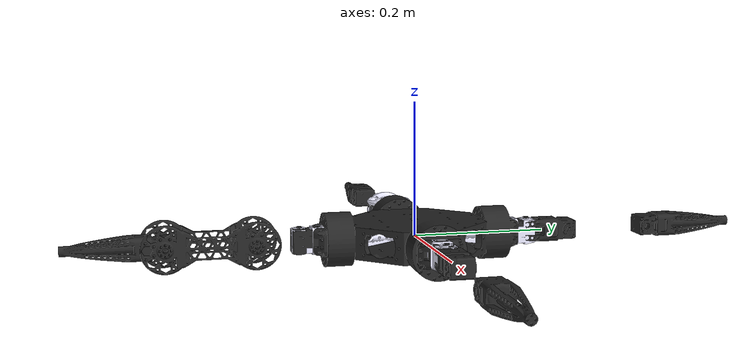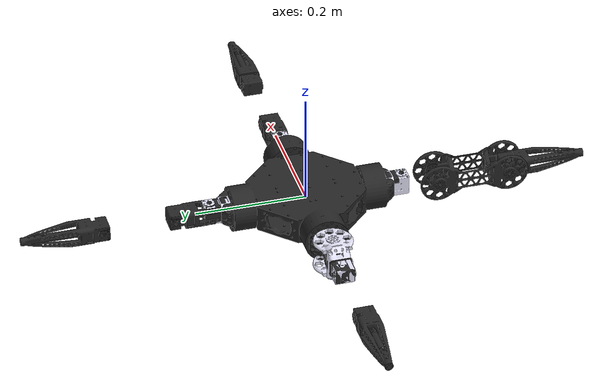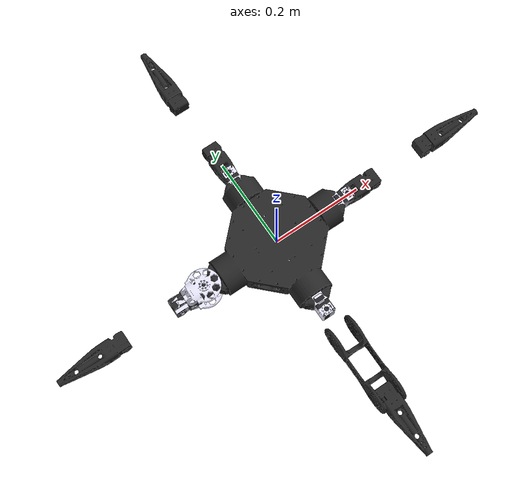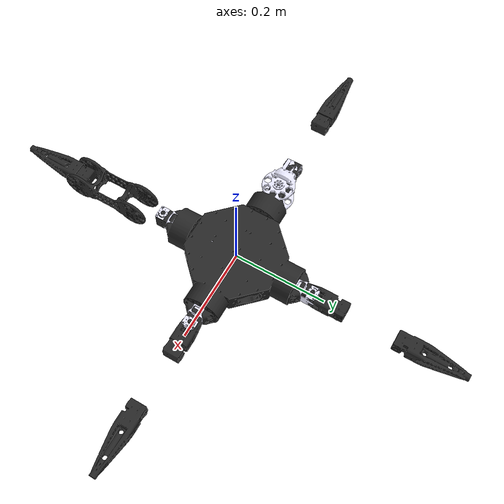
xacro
<?xml version="1.0" ?>
<robot name="moonbot_zero" xmlns:xacro="http://www.ros.org/wiki/xacro">

<xacro:property name="ThisPackage" value="moonbot_zero_tuto" />
<xacro:property name="UrdfDataPath" value="package://${ThisPackage}/urdf" />
<xacro:property name="MeshPath" value="package://${ThisPackage}/meshes" />
<xacro:property name="LimUpJ3" value="2.5" />
<xacro:property name="LimLowJ3" value="-0.5" />
<xacro:property name="LimUpJ2" value="1.8" />
<xacro:property name="LimLowJ2" value="-1.8" />
<xacro:property name="LimUpJ1" value="1.8" />
<xacro:property name="LimLowJ1" value="-1.8" />

  <material name="Grey">
      <color rgba="0.9 0.9 0.98 1" />
  </material>
  <material name="Black">
      <color rgba="0.15 0.15 0.15 1" />
  </material>

  <link name="base_link">
  </link>

  <joint name="moonbot_attachment" type="fixed">
    <parent link="base_link"/>
    <child link="body"/>
    <origin rpy="0 0 ${-pi/4}" xyz="0 0 0"/>
  </joint>

  <link
    name="body">
    <visual>
      <origin
        xyz="0 0 0"
        rpy="0 0 0" />
      <geometry>
        <mesh
        filename="${MeshPath}/base_link.STL" />
      </geometry>
      <material
        name="Black">
      </material>
    </visual>
    <collision>
      <origin
        xyz="0 0 0"
        rpy="0 0 0" />
      <geometry>
        <mesh
        filename="${MeshPath}/base_link.STL" />
      </geometry>
    </collision>
  </link>

  <link
    name="Leg4_Link1">
    <inertial>
      <origin
        xyz="0.0294414620665416 0.000429210644156255 0.000528331609438621"
        rpy="0 0 0" />
      <mass
        value="0.105020735679836" />
      <inertia
        ixx="5.03958516891423E-05"
        ixy="2.55477953786253E-08"
        ixz="-2.66438942037819E-11"
        iyy="5.77522460871513E-05"
        iyz="-4.04522226668543E-10"
        izz="3.55414621794419E-05" />
    </inertial>
    <visual>
      <origin
        xyz="0 0 0"
        rpy="0 0 0" />
      <geometry>
        <mesh
        filename="${MeshPath}/Leg4_Link1.STL" />
      </geometry>
      <material
        name="Grey">
      </material>
    </visual>
    <collision>
      <origin
        xyz="0 0 0"
        rpy="0 0 0" />
      <geometry>
        <mesh
        filename="${MeshPath}/Leg4_Link1.STL" />
      </geometry>
    </collision>
  </link>

  <joint
    name="joint4_1"
    type="revolute">
    <origin
      xyz="0.12358976172761 -0.123944895015314 0"
      rpy="0 0 -0.788685462535773" />
    <parent
      link="body" />
    <child
      link="Leg4_Link1" />
    <axis
      xyz="0 0 -1" />
    <limit
      lower="${LimLowJ1}"
      upper="${LimUpJ1}"
      effort="0"
      velocity="0" />
  </joint>

  <link
    name="Leg4_Link2">
    <inertial>
      <origin
        xyz="0.0645641856917231 -0.000380757548162976 -1.25437123466021E-08"
        rpy="0 0 0" />
      <mass
        value="0.0947289059291857" />
      <inertia
        ixx="6.5996634914315E-05"
        ixy="-1.14989094425379E-11"
        ixz="-7.96210970419042E-20"
        iyy="7.84793365200501E-05"
        iyz="-5.21500243399934E-14"
        izz="5.75125899529497E-05" />
    </inertial>
    <visual>
      <origin
        xyz="0 0 0"
        rpy="0 0 0" />
      <geometry>
        <mesh
        filename="${MeshPath}/Leg4_Link2.STL" />
      </geometry>
      <material
        name="Black">
      </material>
    </visual>
    <collision>
      <origin
        xyz="0 0 0"
        rpy="0 0 0" />
      <geometry>
        <mesh
        filename="${MeshPath}/Leg4_Link2.STL" />
      </geometry>
    </collision>
  </link>
  <joint
    name="joint4_2"
    type="revolute">
    <origin
      xyz="0.064547589763765 0.000839291537877395 0"
      rpy="-1.5707963267949 0 0.00328729913831281" />
    <parent
      link="Leg4_Link1" />
    <child
      link="Leg4_Link2" />
    <axis
      xyz="0 0 1" />
    <limit
      lower="${LimLowJ2}"
      upper="${LimUpJ2}"
      effort="0"
      velocity="0" />
  </joint>
  <link
    name="Leg4_Link3">
    <inertial>
      <origin
        xyz="-0.0370693144736668 -0.000380323488197903 -0.00020198153020673"
        rpy="0 0 0" />
      <mass
        value="0.0772634480729255" />
      <inertia
        ixx="1.05486923513028E-05"
        ixy="-7.24679284950013E-10"
        ixz="-1.37154351214397E-09"
        iyy="5.46309558069885E-05"
        iyz="8.42217629992616E-10"
        izz="5.60573761162325E-05" />
    </inertial>
    <visual>
      <origin
        xyz="0 0 0"
        rpy="0 0 0" />
      <geometry>
        <mesh
        filename="${MeshPath}/Leg4_Link3.STL" />
      </geometry>
      <material
        name="Black">
      </material>
    </visual>
    <collision>
      <origin
        xyz="0 0 0"
        rpy="0 0 0" />
      <geometry>
        <mesh
        filename="${MeshPath}/Leg4_Link3.STL" />
      </geometry>
    </collision>
  </link>
  <joint
    name="joint4_3"
    type="revolute">
    <origin
      xyz="0.129 0 0"
      rpy="3.14159265358979 0 3.14159265358979" />
    <parent
      link="Leg4_Link2" />
    <child
      link="Leg4_Link3" />
    <axis
      xyz="0 0 -1" />
    <limit
      lower="${LimLowJ3}"
      upper="${LimUpJ3}"
      effort="0"
      velocity="0" />
  </joint>

  <link
    name="Leg1_Link1">
    <inertial>
      <origin
        xyz="0.0294427143771537 0.000332375587891467 0.000732999154289968"
        rpy="0 0 0" />
      <mass
        value="0.105020760360255" />
      <inertia
        ixx="5.03957788515561E-05"
        ixy="1.29854715364862E-09"
        ixz="2.87177390554789E-11"
        iyy="5.77523298235933E-05"
        iyz="-4.0667835144464E-10"
        izz="3.55414743736423E-05" />
    </inertial>
    <visual>
      <origin
        xyz="0 0 0"
        rpy="0 0 0" />
      <geometry>
        <mesh
        filename="${MeshPath}/Leg1_Link1.STL" />
      </geometry>
      <material
        name="Grey">
      </material>
    </visual>
    <collision>
      <origin
        xyz="0 0 0"
        rpy="0 0 0" />
      <geometry>
        <mesh
        filename="${MeshPath}/Leg1_Link1.STL" />
      </geometry>
    </collision>
  </link>
  <joint
    name="joint1_1"
    type="revolute">
    <origin
      xyz="0.123943315118203 0.123588802460456 0"
      rpy="0 0 0.78539816339745" />
    <parent
      link="body" />
    <child
      link="Leg1_Link1" />
    <axis
      xyz="0 0 -1" />
    <limit
      lower="${LimLowJ1}"
      upper="${LimUpJ1}"
      effort="0"
      velocity="0" />
  </joint>
  <link
    name="Leg1_Link2">
    <inertial>
      <origin
        xyz="0.0645641856917233 -0.000880757548164717 0.000377087605287096"
        rpy="0 0 0" />
      <mass
        value="0.0947289059291857" />
      <inertia
        ixx="6.59966349143149E-05"
        ixy="-1.14989094814092E-11"
        ixz="1.03338019565025E-19"
        iyy="7.84793365200501E-05"
        iyz="-5.2149970193085E-14"
        izz="5.75125899529497E-05" />
    </inertial>
    <visual>
      <origin
        xyz="0 0 0"
        rpy="0 0 0" />
      <geometry>
        <mesh
        filename="${MeshPath}/Leg1_Link2.STL" />
      </geometry>
      <material
        name="Black">
      </material>
    </visual>
    <collision>
      <origin
        xyz="0 0 0"
        rpy="0 0 0" />
      <geometry>
        <mesh
        filename="${MeshPath}/Leg1_Link2.STL" />
      </geometry>
    </collision>
  </link>
  <joint
    name="joint1_2"
    type="revolute">
    <origin
      xyz="0.0645499999999996 0.00024999999999816 0"
      rpy="-1.5707963267949 0 0" />
    <parent
      link="Leg1_Link1" />
    <child
      link="Leg1_Link2" />
    <axis
      xyz="0 0 1" />
    <limit
      lower="${LimLowJ2}"
      upper="${LimUpJ2}"
      effort="0"
      velocity="0" />
  </joint>
  <link
    name="Leg1_Link3">
    <inertial>
      <origin
        xyz="-0.0370693155566675 -0.000880323428924703 -0.000201981608920571"
        rpy="0 0 0" />
      <mass
        value="0.0772634494820567" />
      <inertia
        ixx="1.05486923990629E-05"
        ixy="-7.2481248314855E-10"
        ixz="-1.37134818199851E-09"
        iyy="5.46309569578241E-05"
        iyz="8.42195387464532E-10"
        izz="5.60573772495965E-05" />
    </inertial>
    <visual>
      <origin
        xyz="0 0 0"
        rpy="0 0 0" />
      <geometry>
        <mesh
        filename="${MeshPath}/Leg1_Link3.STL" />
      </geometry>
      <material
        name="Black">
      </material>
    </visual>
    <collision>
      <origin
        xyz="0 0 0"
        rpy="0 0 0" />
      <geometry>
        <mesh
        filename="${MeshPath}/Leg1_Link3.STL" />
      </geometry>
    </collision>
  </link>
  <joint
    name="joint1_3"
    type="revolute">
    <origin
      xyz="0.129 0 0"
      rpy="3.14159265358979 0 3.14159265358979" />
    <parent
      link="Leg1_Link2" />
    <child
      link="Leg1_Link3" />
    <axis
      xyz="0 0 -1" />
    <limit
      lower="${LimLowJ3}"
      upper="${LimUpJ3}"
      effort="0"
      velocity="0" />
  </joint>
  <link
    name="Leg2_Link1">
    <inertial>
      <origin
        xyz="0.0294414620062189 0.000429198485165122 0.000528343210598475"
        rpy="0 0 0" />
      <mass
        value="0.105020734162556" />
      <inertia
        ixx="5.03958504054436E-05"
        ixy="2.55287025426874E-08"
        ixz="-9.48201042095405E-12"
        iyy="5.77522451526523E-05"
        iyz="-4.04846587906767E-10"
        izz="3.55414621172474E-05" />
    </inertial>
    <visual>
      <origin
        xyz="0 0 0"
        rpy="0 0 0" />
      <geometry>
        <mesh
        filename="${MeshPath}/Leg2_Link1.STL" />
      </geometry>
      <material
        name="Grey">
      </material>
    </visual>
    <collision>
      <origin
        xyz="0 0 0"
        rpy="0 0 0" />
      <geometry>
        <mesh
        filename="${MeshPath}/Leg2_Link1.STL" />
      </geometry>
    </collision>
  </link>
  <joint
    name="joint2_1"
    type="revolute">
    <origin
      xyz="-0.123590382357569 0.12394235585105 0"
      rpy="0 0 2.35290719105402" />
    <parent
      link="body" />
    <child
      link="Leg2_Link1" />
    <axis
      xyz="0 0 -1" />
    <limit
      lower="${LimLowJ1}"
      upper="${LimUpJ1}"
      effort="0"
      velocity="0" />
  </joint>
  <link
    name="Leg2_Link2">
    <inertial>
      <origin
        xyz="0.0644999999999996 -0.000380757855914939 1.25437124715022E-08"
        rpy="0 0 0" />
      <mass
        value="0.0947289059291848" />
      <inertia
        ixx="6.59966349143144E-05"
        ixy="1.14989094130088E-11"
        ixz="9.30952194366859E-10"
        iyy="7.84793365200496E-05"
        iyz="1.14434874068519E-18"
        izz="5.75125899529491E-05" />
    </inertial>
    <visual>
      <origin
        xyz="0 0 0"
        rpy="0 0 0" />
      <geometry>
        <mesh
        filename="${MeshPath}/Leg2_Link2.STL" />
      </geometry>
      <material
        name="Black">
      </material>
    </visual>
    <collision>
      <origin
        xyz="0 0 0"
        rpy="0 0 0" />
      <geometry>
        <mesh
        filename="${MeshPath}/Leg2_Link2.STL" />
      </geometry>
    </collision>
  </link>
  <joint
    name="joint2_2"
    type="revolute">
    <origin
      xyz="0.0645475897637656 0.000839291537877494 0"
      rpy="-1.5707963267949 0 0.00328729913832036" />
    <parent
      link="Leg2_Link1" />
    <child
      link="Leg2_Link2" />
    <axis
      xyz="0 0 1" />
    <limit
      lower="${LimLowJ2}"
      upper="${LimUpJ2}"
      effort="0"
      velocity="0" />
  </joint>
  <link
    name="Leg2_Link3">
    <inertial>
      <origin
        xyz="-0.0370693165713529 -0.000381442608562289 0.000175437395816741"
        rpy="0 0 0" />
      <mass
        value="0.0772634502465918" />
      <inertia
        ixx="1.05486924620915E-05"
        ixy="7.24450900554641E-10"
        ixz="-1.29283976014289E-09"
        iyy="5.46309601627722E-05"
        iyz="8.42178237131379E-10"
        izz="5.6057380402323E-05" />
    </inertial>
    <visual>
      <origin
        xyz="0 0 0"
        rpy="0 0 0" />
      <geometry>
        <mesh
        filename="${MeshPath}/Leg2_Link3.STL" />
      </geometry>
      <material
        name="Black">
      </material>
    </visual>
    <collision>
      <origin
        xyz="0 0 0"
        rpy="0 0 0" />
      <geometry>
        <mesh
        filename="${MeshPath}/Leg2_Link3.STL" />
      </geometry>
    </collision>
  </link>
  <joint
    name="joint2_3"
    type="revolute">
    <origin
      xyz="0.129 0 0"
      rpy="3.14159265358979 0 3.14159265358979" />
    <parent
      link="Leg2_Link2" />
    <child
      link="Leg2_Link3" />
    <axis
      xyz="0 0 -1" />
    <limit
      lower="${LimLowJ3}"
      upper="${LimUpJ3}"
      effort="0"
      velocity="0" />
  </joint>
  <link
    name="Leg3_Link1">
    <inertial>
      <origin
        xyz="0.0294414627011094 0.000429173001306057 0.000732988165359273"
        rpy="0 0 0" />
      <mass
        value="0.105020761302338" />
      <inertia
        ixx="5.03958677028861E-05"
        ixy="2.55006482832663E-08"
        ixz="1.29498528069975E-11"
        iyy="5.7752242308029E-05"
        iyz="-4.06433240056961E-10"
        izz="3.55414744175479E-05" />
    </inertial>
    <visual>
      <origin
        xyz="0 0 0"
        rpy="0 0 0" />
      <geometry>
        <mesh
        filename="${MeshPath}/Leg3_Link1.STL" />
      </geometry>
      <material
        name="Grey">
      </material>
    </visual>
    <collision>
      <origin
        xyz="0 0 0"
        rpy="0 0 0" />
      <geometry>
        <mesh
        filename="${MeshPath}/Leg3_Link1.STL" />
      </geometry>
    </collision>
  </link>
  <joint
    name="joint3_1"
    type="revolute">
    <origin
      xyz="-0.123943935748161 -0.123591341624721 0"
      rpy="0 0 -2.3594817893307" />
    <parent
      link="body" />
    <child
      link="Leg3_Link1" />
    <axis
      xyz="0 0 -1" />
    <limit
      lower="${LimLowJ1}"
      upper="${LimUpJ1}"
      effort="0"
      velocity="0" />
  </joint>
  <link
    name="Leg3_Link2">
    <inertial>
      <origin
        xyz="0.0644999999999997 -0.000880757240415178 0.000377112692714177"
        rpy="0 0 0" />
      <mass
        value="0.0947289059291855" />
      <inertia
        ixx="6.59966349143148E-05"
        ixy="1.14989095663137E-11"
        ixz="-9.30952194504078E-10"
        iyy="7.847933652005E-05"
        iyz="5.42040202033818E-19"
        izz="5.75125899529495E-05" />
    </inertial>
    <visual>
      <origin
        xyz="0 0 0"
        rpy="0 0 0" />
      <geometry>
        <mesh
        filename="${MeshPath}/Leg3_Link2.STL" />
      </geometry>
      <material
        name="Black">
      </material>
    </visual>
    <collision>
      <origin
        xyz="0 0 0"
        rpy="0 0 0" />
      <geometry>
        <mesh
        filename="${MeshPath}/Leg3_Link2.STL" />
      </geometry>
    </collision>
  </link>
  <joint
    name="joint3_2"
    type="revolute">
    <origin
      xyz="0.0645488294025272 0.00046219342641185 0"
      rpy="-1.57079632679489 0 0.00328729913833712" />
    <parent
      link="Leg3_Link1" />
    <child
      link="Leg3_Link2" />
    <axis
      xyz="0 0 1" />
    <limit
      lower="${LimLowJ2}"
      upper="${LimUpJ2}"
      effort="0"
      velocity="0" />
  </joint>
  <link
    name="Leg3_Link3">
    <inertial>
      <origin
        xyz="-0.0370693146698898 -0.000881442674122288 -0.000201662609629255"
        rpy="0 0 0" />
      <mass
        value="0.0772634483179533" />
      <inertia
        ixx="1.05486923543131E-05"
        ixy="7.24708823258641E-10"
        ixz="-1.29342332527109E-09"
        iyy="5.4630956017184E-05"
        iyz="8.42216429059082E-10"
        izz="5.60573763237783E-05" />
    </inertial>
    <visual>
      <origin
        xyz="0 0 0"
        rpy="0 0 0" />
      <geometry>
        <mesh
        filename="${MeshPath}/Leg3_Link3.STL" />
      </geometry>
      <material
        name="Black">
      </material>
    </visual>
    <collision>
      <origin
        xyz="0 0 0"
        rpy="0 0 0" />
      <geometry>
        <mesh
        filename="${MeshPath}/Leg3_Link3.STL" />
      </geometry>
    </collision>
  </link>
  <joint
    name="joint3_3"
    type="revolute">
    <origin
      xyz="0.128999999999999 0 0"
      rpy="3.14159265358979 0 3.14159265358979" />
    <parent
      link="Leg3_Link2" />
    <child
      link="Leg3_Link3" />
    <axis
      xyz="0 0 -1" />
    <limit
      lower="${LimLowJ3}"
      upper="${LimUpJ3}"
      effort="0"
      velocity="0" />
  </joint>

  <link name="end1">
  </link>

  <joint name="end_effector1" type="fixed">
    <parent link="Leg1_Link3"/>
    <child link="end1"/>
    <origin rpy="0 0 0" xyz="-0.16 0 0"/>
  </joint>

  <link name="end2">
  </link>

  <joint name="end_effector2" type="fixed">
    <parent link="Leg2_Link3"/>
    <child link="end2"/>
    <origin rpy="0 0 0" xyz="-0.16 0 0"/>
  </joint>

  <link name="end3">
  </link>

  <joint name="end_effector3" type="fixed">
    <parent link="Leg3_Link3"/>
    <child link="end3"/>
    <origin rpy="0 0 0" xyz="-0.16 0 0"/>
  </joint>

  <link name="end4">
  </link>

  <joint name="end_effector4" type="fixed">
    <parent link="Leg4_Link3"/>
    <child link="end4"/>
    <origin rpy="0 0 0" xyz="-0.16 0 0"/>
  </joint>

</robot>
